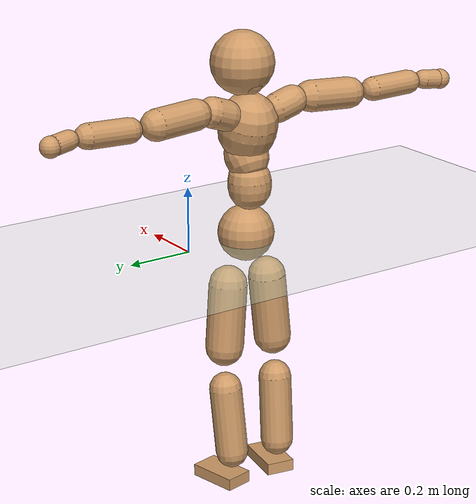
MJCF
<mujoco model="humanoid">
  <compiler coordinate="local"/>
  <default>
    <joint damping="0.0" armature="0.01" stiffness="0.0" limited="true"/>
    <geom conaffinity="1" condim="3" contype="7" margin="0.001" rgba="0.8 0.6 .4 1"/>
  </default>
  <asset>
    <texture type="skybox" builtin="gradient" rgb1=".4 .5 .6" rgb2="0 0 0" width="100" height="100"/>
    <texture builtin="flat" height="1278" mark="cross" markrgb="1 1 1" name="texgeom" random="0.01" rgb1="0.8 0.6 0.4" rgb2="0.8 0.6 0.4" type="cube" width="127"/>
    <texture builtin="checker" height="100" name="texplane" rgb1="0 0 0" rgb2="0.8 0.8 0.8" type="2d" width="100"/>
    <material name="MatPlane" reflectance="0.5" shininess="1" specular="1" texrepeat="60 60" texture="texplane"/>
    <material name="geom" texture="texgeom" texuniform="true"/>
  </asset>
  <worldbody>
    <light cutoff="100" diffuse="1 1 1" dir="-0 0 -1.3" directional="true" exponent="1" pos="0 0 1.3" specular=".1 .1 .1"/>
    <geom conaffinity="1" condim="3" name="floor" pos="0 0 0" rgba="0.8 0.9 0.8 1" size="100 100 .2" type="plane" material="MatPlane"/>
    <body name="Pelvis" pos="-0.0009 -0.2038 0.0242">
      <freejoint name="Pelvis"/>
      <geom type="sphere" contype="1" conaffinity="1" density="500" size="0.0863" pos="0.0000 0.0000 0.0000" name="Pelvis"/>
      <body name="L_Hip" pos="-0.0087 0.0674 -0.084">
        <joint name="L_Hip_x" type="hinge" pos="0 0 0" axis="1 0 0" stiffness="800" damping="80" armature="0.02" range="-180.0000 180.0000"/>
        <joint name="L_Hip_y" type="hinge" pos="0 0 0" axis="0 1 0" stiffness="800" damping="80" armature="0.02" range="-180.0000 180.0000"/>
        <joint name="L_Hip_z" type="hinge" pos="0 0 0" axis="0 0 1" stiffness="800" damping="80" armature="0.02" range="-180.0000 180.0000"/>
        <geom type="capsule" contype="1" conaffinity="1" density="500" fromto="-0.0009 0.0055 -0.0665 -0.0036 0.0220 -0.2661" size="0.0586" name="L_Hip"/>
        <body name="L_Knee" pos="-0.0045 0.0275 -0.3326">
          <joint name="L_Knee_x" type="hinge" pos="0 0 0" axis="1 0 0" stiffness="800" damping="80" armature="0.02" range="-180.0000 180.0000"/>
          <joint name="L_Knee_y" type="hinge" pos="0 0 0" axis="0 1 0" stiffness="800" damping="80" armature="0.02" range="-180.0000 180.0000"/>
          <joint name="L_Knee_z" type="hinge" pos="0 0 0" axis="0 0 1" stiffness="800" damping="80" armature="0.02" range="-180.0000 180.0000"/>
          <geom type="capsule" contype="1" conaffinity="1" density="500" fromto="-0.0079 -0.0021 -0.0689 -0.0314 -0.0085 -0.2754" size="0.0506" name="L_Knee"/>
          <body name="L_Ankle" pos="-0.0393 -0.0106 -0.3443">
            <joint name="L_Ankle_x" type="hinge" pos="0 0 0" axis="1 0 0" stiffness="800" damping="80" armature="0.02" range="-180.0000 180.0000"/>
            <joint name="L_Ankle_y" type="hinge" pos="0 0 0" axis="0 1 0" stiffness="800" damping="80" armature="0.02" range="-180.0000 180.0000"/>
            <joint name="L_Ankle_z" type="hinge" pos="0 0 0" axis="0 0 1" stiffness="800" damping="80" armature="0.02" range="-180.0000 180.0000"/>
            <geom type="box" contype="1" conaffinity="1" density="500" pos="0.0539 0.0111 -0.0248" size="0.0782 0.0438 0.0184" quat="0.9949 0.0000 0.0000 0.1011" name="L_Ankle"/>
            <body name="L_Toe" pos="0.1078 0.0222 -0.0496">
              <joint name="L_Toe_x" type="hinge" pos="0 0 0" axis="1 0 0" stiffness="500" damping="50" armature="0.02" range="-180.0000 180.0000"/>
              <joint name="L_Toe_y" type="hinge" pos="0 0 0" axis="0 1 0" stiffness="500" damping="50" armature="0.02" range="-180.0000 180.0000"/>
              <joint name="L_Toe_z" type="hinge" pos="0 0 0" axis="0 0 1" stiffness="500" damping="50" armature="0.02" range="-180.0000 180.0000"/>
              <geom type="box" contype="1" conaffinity="1" density="500" pos="0.0000 0.0000 0.0246" size="0.0009 0.0022 0.0009" quat="0.9941 0.0000 0.0000 0.1080" name="L_Toe"/>
            </body>
          </body>
        </body>
      </body>
      <body name="R_Hip" pos="-0.0061 -0.0655 -0.083">
        <joint name="R_Hip_x" type="hinge" pos="0 0 0" axis="1 0 0" stiffness="800" damping="80" armature="0.02" range="-180.0000 180.0000"/>
        <joint name="R_Hip_y" type="hinge" pos="0 0 0" axis="0 1 0" stiffness="800" damping="80" armature="0.02" range="-180.0000 180.0000"/>
        <joint name="R_Hip_z" type="hinge" pos="0 0 0" axis="0 0 1" stiffness="800" damping="80" armature="0.02" range="-180.0000 180.0000"/>
        <geom type="capsule" contype="1" conaffinity="1" density="500" fromto="-0.0014 -0.0063 -0.0678 -0.0056 -0.0251 -0.2712" size="0.058" name="R_Hip"/>
        <body name="R_Knee" pos="-0.007 -0.0313 -0.339">
          <joint name="R_Knee_x" type="hinge" pos="0 0 0" axis="1 0 0" stiffness="800" damping="80" armature="0.02" range="-180.0000 180.0000"/>
          <joint name="R_Knee_y" type="hinge" pos="0 0 0" axis="0 1 0" stiffness="800" damping="80" armature="0.02" range="-180.0000 180.0000"/>
          <joint name="R_Knee_z" type="hinge" pos="0 0 0" axis="0 0 1" stiffness="800" damping="80" armature="0.02" range="-180.0000 180.0000"/>
          <geom type="capsule" contype="1" conaffinity="1" density="500" fromto="-0.0077 0.0026 -0.0690 -0.0307 0.0103 -0.2758" size="0.0509" name="R_Knee"/>
          <body name="R_Ankle" pos="-0.0384 0.0128 -0.3448">
            <joint name="R_Ankle_x" type="hinge" pos="0 0 0" axis="1 0 0" stiffness="800" damping="80" armature="0.02" range="-180.0000 180.0000"/>
            <joint name="R_Ankle_y" type="hinge" pos="0 0 0" axis="0 1 0" stiffness="800" damping="80" armature="0.02" range="-180.0000 180.0000"/>
            <joint name="R_Ankle_z" type="hinge" pos="0 0 0" axis="0 0 1" stiffness="800" damping="80" armature="0.02" range="-180.0000 180.0000"/>
            <geom type="box" contype="1" conaffinity="1" density="500" pos="0.0555 -0.0097 -0.0208" size="0.0785 0.0441 0.0183" quat="0.9962 0.0000 0.0000 -0.0867" name="R_Ankle"/>
            <body name="R_Toe" pos="0.111 -0.0195 -0.0416">
              <joint name="R_Toe_x" type="hinge" pos="0 0 0" axis="1 0 0" stiffness="500" damping="50" armature="0.02" range="-180.0000 180.0000"/>
              <joint name="R_Toe_y" type="hinge" pos="0 0 0" axis="0 1 0" stiffness="500" damping="50" armature="0.02" range="-180.0000 180.0000"/>
              <joint name="R_Toe_z" type="hinge" pos="0 0 0" axis="0 0 1" stiffness="500" damping="50" armature="0.02" range="-180.0000 180.0000"/>
              <geom type="box" contype="1" conaffinity="1" density="500" pos="0.0000 0.0000 0.0225" size="0.0009 0.0022 0.001" quat="0.9971 0.0000 0.0000 -0.0766" name="R_Toe"/>
            </body>
          </body>
        </body>
      </body>
      <body name="Torso" pos="-0.0187 -0.0021 0.0962">
        <joint name="Torso_x" type="hinge" pos="0 0 0" axis="1 0 0" stiffness="1000" damping="100" armature="0.02" range="-180.0000 180.0000"/>
        <joint name="Torso_y" type="hinge" pos="0 0 0" axis="0 1 0" stiffness="1000" damping="100" armature="0.02" range="-180.0000 180.0000"/>
        <joint name="Torso_z" type="hinge" pos="0 0 0" axis="0 0 1" stiffness="1000" damping="100" armature="0.02" range="-180.0000 180.0000"/>
        <geom type="capsule" contype="1" conaffinity="1" density="500" fromto="-0.0005 0.0020 0.0732 -0.0003 0.0013 0.0488" size="0.0655" name="Torso"/>
        <body name="Spine" pos="-0.0009 0.0033 0.1221">
          <joint name="Spine_x" type="hinge" pos="0 0 0" axis="1 0 0" stiffness="1000" damping="100" armature="0.02" range="-180.0000 180.0000"/>
          <joint name="Spine_y" type="hinge" pos="0 0 0" axis="0 1 0" stiffness="1000" damping="100" armature="0.02" range="-180.0000 180.0000"/>
          <joint name="Spine_z" type="hinge" pos="0 0 0" axis="0 0 1" stiffness="1000" damping="100" armature="0.02" range="-180.0000 180.0000"/>
          <geom type="capsule" contype="1" conaffinity="1" density="500" fromto="0.0150 0.0012 0.0281 0.0100 0.0008 0.0188" size="0.0668" name="Spine"/>
          <body name="Chest" pos="0.025 0.0021 0.0469">
            <joint name="Chest_x" type="hinge" pos="0 0 0" axis="1 0 0" stiffness="1000" damping="100" armature="0.02" range="-180.0000 180.0000"/>
            <joint name="Chest_y" type="hinge" pos="0 0 0" axis="0 1 0" stiffness="1000" damping="100" armature="0.02" range="-180.0000 180.0000"/>
            <joint name="Chest_z" type="hinge" pos="0 0 0" axis="0 0 1" stiffness="1000" damping="100" armature="0.02" range="-180.0000 180.0000"/>
            <geom type="capsule" contype="1" conaffinity="1" density="500" fromto="-0.0245 -0.0008 0.0830 -0.0163 -0.0005 0.0554" size="0.0887" name="Chest"/>
            <body name="Neck" pos="-0.047 -0.0017 0.1954">
              <joint name="Neck_x" type="hinge" pos="0 0 0" axis="1 0 0" stiffness="500" damping="50" armature="0.02" range="-180.0000 180.0000"/>
              <joint name="Neck_y" type="hinge" pos="0 0 0" axis="0 1 0" stiffness="500" damping="50" armature="0.02" range="-180.0000 180.0000"/>
              <joint name="Neck_z" type="hinge" pos="0 0 0" axis="0 0 1" stiffness="500" damping="50" armature="0.02" range="-180.0000 180.0000"/>
              <geom type="capsule" contype="1" conaffinity="1" density="500" fromto="0.0098 0.0008 0.0120 0.0391 0.0032 0.0481" size="0.0391" name="Neck"/>
              <body name="Head" pos="0.0489 0.004 0.0601">
                <joint name="Head_x" type="hinge" pos="0 0 0" axis="1 0 0" stiffness="500" damping="50" armature="0.02" range="-180.0000 180.0000"/>
                <joint name="Head_y" type="hinge" pos="0 0 0" axis="0 1 0" stiffness="500" damping="50" armature="0.02" range="-180.0000 180.0000"/>
                <joint name="Head_z" type="hinge" pos="0 0 0" axis="0 0 1" stiffness="500" damping="50" armature="0.02" range="-180.0000 180.0000"/>
                <geom type="sphere" contype="1" conaffinity="1" density="500" size="0.0961" pos="0.0000 0.0000 0.0000" name="Head"/>
              </body>
            </body>
            <body name="L_Thorax" pos="-0.0352 0.0701 0.111">
              <joint name="L_Thorax_x" type="hinge" pos="0 0 0" axis="1 0 0" stiffness="500" damping="50" armature="0.02" range="-180.0000 180.0000"/>
              <joint name="L_Thorax_y" type="hinge" pos="0 0 0" axis="0 1 0" stiffness="500" damping="50" armature="0.02" range="-180.0000 180.0000"/>
              <joint name="L_Thorax_z" type="hinge" pos="0 0 0" axis="0 0 1" stiffness="500" damping="50" armature="0.02" range="-180.0000 180.0000"/>
              <geom type="capsule" contype="1" conaffinity="1" density="500" fromto="-0.0012 0.0164 0.0058 -0.0049 0.0654 0.0231" size="0.0463" name="L_Thorax"/>
              <body name="L_Shoulder" pos="-0.0062 0.0818 0.0289">
                <joint name="L_Shoulder_x" type="hinge" pos="0 0 0" axis="1 0 0" stiffness="500" damping="50" armature="0.02" range="-720.0000 720.0000"/>
                <joint name="L_Shoulder_y" type="hinge" pos="0 0 0" axis="0 1 0" stiffness="500" damping="50" armature="0.02" range="-720.0000 720.0000"/>
                <joint name="L_Shoulder_z" type="hinge" pos="0 0 0" axis="0 0 1" stiffness="500" damping="50" armature="0.02" range="-720.0000 720.0000"/>
                <geom type="capsule" contype="1" conaffinity="1" density="500" fromto="-0.0050 0.0463 -0.0018 -0.0198 0.1852 -0.0072" size="0.0467" name="L_Shoulder"/>
                <body name="L_Elbow" pos="-0.0248 0.2315 -0.009">
                  <joint name="L_Elbow_x" type="hinge" pos="0 0 0" axis="1 0 0" stiffness="500" damping="50" armature="0.02" range="-720.0000 720.0000"/>
                  <joint name="L_Elbow_y" type="hinge" pos="0 0 0" axis="0 1 0" stiffness="500" damping="50" armature="0.02" range="-720.0000 720.0000"/>
                  <joint name="L_Elbow_z" type="hinge" pos="0 0 0" axis="0 0 1" stiffness="500" damping="50" armature="0.02" range="-720.0000 720.0000"/>
                  <geom type="capsule" contype="1" conaffinity="1" density="500" fromto="-0.0001 0.0441 0.0014 -0.0004 0.1764 0.0058" size="0.0369" name="L_Elbow"/>
                  <body name="L_Wrist" pos="-0.0005 0.2205 0.0072">
                    <joint name="L_Wrist_x" type="hinge" pos="0 0 0" axis="1 0 0" stiffness="300" damping="30" armature="0.02" range="-180.0000 180.0000"/>
                    <joint name="L_Wrist_y" type="hinge" pos="0 0 0" axis="0 1 0" stiffness="300" damping="30" armature="0.02" range="-180.0000 180.0000"/>
                    <joint name="L_Wrist_z" type="hinge" pos="0 0 0" axis="0 0 1" stiffness="300" damping="30" armature="0.02" range="-180.0000 180.0000"/>
                    <geom type="capsule" contype="1" conaffinity="1" density="500" fromto="-0.0025 0.0151 -0.0018 -0.0100 0.0605 -0.0073" size="0.0287" name="L_Wrist"/>
                    <body name="L_Hand" pos="-0.0125 0.0756 -0.0091">
                      <joint name="L_Hand_x" type="hinge" pos="0 0 0" axis="1 0 0" stiffness="300" damping="30" armature="0.02" range="-180.0000 180.0000"/>
                      <joint name="L_Hand_y" type="hinge" pos="0 0 0" axis="0 1 0" stiffness="300" damping="30" armature="0.02" range="-180.0000 180.0000"/>
                      <joint name="L_Hand_z" type="hinge" pos="0 0 0" axis="0 0 1" stiffness="300" damping="30" armature="0.02" range="-180.0000 180.0000"/>
                      <geom type="sphere" contype="1" conaffinity="1" density="500" size="0.0306" pos="0.0000 0.0000 0.0000" name="L_Hand"/>
                    </body>
                  </body>
                </body>
              </body>
            </body>
            <body name="R_Thorax" pos="-0.0402 -0.0723 0.1088">
              <joint name="R_Thorax_x" type="hinge" pos="0 0 0" axis="1 0 0" stiffness="500" damping="50" armature="0.02" range="-180.0000 180.0000"/>
              <joint name="R_Thorax_y" type="hinge" pos="0 0 0" axis="0 1 0" stiffness="500" damping="50" armature="0.02" range="-180.0000 180.0000"/>
              <joint name="R_Thorax_z" type="hinge" pos="0 0 0" axis="0 0 1" stiffness="500" damping="50" armature="0.02" range="-180.0000 180.0000"/>
              <geom type="capsule" contype="1" conaffinity="1" density="500" fromto="-0.0020 -0.0172 0.0060 -0.0078 -0.0688 0.0239" size="0.0456" name="R_Thorax"/>
              <body name="R_Shoulder" pos="-0.0098 -0.086 0.0299">
                <joint name="R_Shoulder_x" type="hinge" pos="0 0 0" axis="1 0 0" stiffness="500" damping="50" armature="0.02" range="-720.0000 720.0000"/>
                <joint name="R_Shoulder_y" type="hinge" pos="0 0 0" axis="0 1 0" stiffness="500" damping="50" armature="0.02" range="-720.0000 720.0000"/>
                <joint name="R_Shoulder_z" type="hinge" pos="0 0 0" axis="0 0 1" stiffness="500" damping="50" armature="0.02" range="-720.0000 720.0000"/>
                <geom type="capsule" contype="1" conaffinity="1" density="500" fromto="-0.0036 -0.0455 -0.0020 -0.0144 -0.1819 -0.0082" size="0.0479" name="R_Shoulder"/>
                <body name="R_Elbow" pos="-0.0179 -0.2274 -0.0102">
                  <joint name="R_Elbow_x" type="hinge" pos="0 0 0" axis="1 0 0" stiffness="500" damping="50" armature="0.02" range="-720.0000 720.0000"/>
                  <joint name="R_Elbow_y" type="hinge" pos="0 0 0" axis="0 1 0" stiffness="500" damping="50" armature="0.02" range="-720.0000 720.0000"/>
                  <joint name="R_Elbow_z" type="hinge" pos="0 0 0" axis="0 0 1" stiffness="500" damping="50" armature="0.02" range="-720.0000 720.0000"/>
                  <geom type="capsule" contype="1" conaffinity="1" density="500" fromto="-0.0008 -0.0455 0.0013 -0.0031 -0.1819 0.0052" size="0.0369" name="R_Elbow"/>
                  <body name="R_Wrist" pos="-0.0039 -0.2274 0.0065">
                    <joint name="R_Wrist_x" type="hinge" pos="0 0 0" axis="1 0 0" stiffness="300" damping="30" armature="0.02" range="-180.0000 180.0000"/>
                    <joint name="R_Wrist_y" type="hinge" pos="0 0 0" axis="0 1 0" stiffness="300" damping="30" armature="0.02" range="-180.0000 180.0000"/>
                    <joint name="R_Wrist_z" type="hinge" pos="0 0 0" axis="0 0 1" stiffness="300" damping="30" armature="0.02" range="-180.0000 180.0000"/>
                    <geom type="capsule" contype="1" conaffinity="1" density="500" fromto="-0.0020 -0.0153 -0.0014 -0.0079 -0.0612 -0.0055" size="0.0295" name="R_Wrist"/>
                    <body name="R_Hand" pos="-0.0099 -0.0765 -0.0069">
                      <joint name="R_Hand_x" type="hinge" pos="0 0 0" axis="1 0 0" stiffness="300" damping="30" armature="0.02" range="-180.0000 180.0000"/>
                      <joint name="R_Hand_y" type="hinge" pos="0 0 0" axis="0 1 0" stiffness="300" damping="30" armature="0.02" range="-180.0000 180.0000"/>
                      <joint name="R_Hand_z" type="hinge" pos="0 0 0" axis="0 0 1" stiffness="300" damping="30" armature="0.02" range="-180.0000 180.0000"/>
                      <geom type="sphere" contype="1" conaffinity="1" density="500" size="0.0309" pos="0.0000 0.0000 0.0000" name="R_Hand"/>
                    </body>
                  </body>
                </body>
              </body>
            </body>
          </body>
        </body>
      </body>
    </body>
  </worldbody>
  <actuator>
    <motor name="L_Hip_x" joint="L_Hip_x" gear="500"/>
    <motor name="L_Hip_y" joint="L_Hip_y" gear="500"/>
    <motor name="L_Hip_z" joint="L_Hip_z" gear="500"/>
    <motor name="L_Knee_x" joint="L_Knee_x" gear="500"/>
    <motor name="L_Knee_y" joint="L_Knee_y" gear="500"/>
    <motor name="L_Knee_z" joint="L_Knee_z" gear="500"/>
    <motor name="L_Ankle_x" joint="L_Ankle_x" gear="500"/>
    <motor name="L_Ankle_y" joint="L_Ankle_y" gear="500"/>
    <motor name="L_Ankle_z" joint="L_Ankle_z" gear="500"/>
    <motor name="L_Toe_x" joint="L_Toe_x" gear="500"/>
    <motor name="L_Toe_y" joint="L_Toe_y" gear="500"/>
    <motor name="L_Toe_z" joint="L_Toe_z" gear="500"/>
    <motor name="R_Hip_x" joint="R_Hip_x" gear="500"/>
    <motor name="R_Hip_y" joint="R_Hip_y" gear="500"/>
    <motor name="R_Hip_z" joint="R_Hip_z" gear="500"/>
    <motor name="R_Knee_x" joint="R_Knee_x" gear="500"/>
    <motor name="R_Knee_y" joint="R_Knee_y" gear="500"/>
    <motor name="R_Knee_z" joint="R_Knee_z" gear="500"/>
    <motor name="R_Ankle_x" joint="R_Ankle_x" gear="500"/>
    <motor name="R_Ankle_y" joint="R_Ankle_y" gear="500"/>
    <motor name="R_Ankle_z" joint="R_Ankle_z" gear="500"/>
    <motor name="R_Toe_x" joint="R_Toe_x" gear="500"/>
    <motor name="R_Toe_y" joint="R_Toe_y" gear="500"/>
    <motor name="R_Toe_z" joint="R_Toe_z" gear="500"/>
    <motor name="Torso_x" joint="Torso_x" gear="500"/>
    <motor name="Torso_y" joint="Torso_y" gear="500"/>
    <motor name="Torso_z" joint="Torso_z" gear="500"/>
    <motor name="Spine_x" joint="Spine_x" gear="500"/>
    <motor name="Spine_y" joint="Spine_y" gear="500"/>
    <motor name="Spine_z" joint="Spine_z" gear="500"/>
    <motor name="Chest_x" joint="Chest_x" gear="500"/>
    <motor name="Chest_y" joint="Chest_y" gear="500"/>
    <motor name="Chest_z" joint="Chest_z" gear="500"/>
    <motor name="Neck_x" joint="Neck_x" gear="500"/>
    <motor name="Neck_y" joint="Neck_y" gear="500"/>
    <motor name="Neck_z" joint="Neck_z" gear="500"/>
    <motor name="Head_x" joint="Head_x" gear="500"/>
    <motor name="Head_y" joint="Head_y" gear="500"/>
    <motor name="Head_z" joint="Head_z" gear="500"/>
    <motor name="L_Thorax_x" joint="L_Thorax_x" gear="500"/>
    <motor name="L_Thorax_y" joint="L_Thorax_y" gear="500"/>
    <motor name="L_Thorax_z" joint="L_Thorax_z" gear="500"/>
    <motor name="L_Shoulder_x" joint="L_Shoulder_x" gear="500"/>
    <motor name="L_Shoulder_y" joint="L_Shoulder_y" gear="500"/>
    <motor name="L_Shoulder_z" joint="L_Shoulder_z" gear="500"/>
    <motor name="L_Elbow_x" joint="L_Elbow_x" gear="500"/>
    <motor name="L_Elbow_y" joint="L_Elbow_y" gear="500"/>
    <motor name="L_Elbow_z" joint="L_Elbow_z" gear="500"/>
    <motor name="L_Wrist_x" joint="L_Wrist_x" gear="500"/>
    <motor name="L_Wrist_y" joint="L_Wrist_y" gear="500"/>
    <motor name="L_Wrist_z" joint="L_Wrist_z" gear="500"/>
    <motor name="L_Hand_x" joint="L_Hand_x" gear="500"/>
    <motor name="L_Hand_y" joint="L_Hand_y" gear="500"/>
    <motor name="L_Hand_z" joint="L_Hand_z" gear="500"/>
    <motor name="R_Thorax_x" joint="R_Thorax_x" gear="500"/>
    <motor name="R_Thorax_y" joint="R_Thorax_y" gear="500"/>
    <motor name="R_Thorax_z" joint="R_Thorax_z" gear="500"/>
    <motor name="R_Shoulder_x" joint="R_Shoulder_x" gear="500"/>
    <motor name="R_Shoulder_y" joint="R_Shoulder_y" gear="500"/>
    <motor name="R_Shoulder_z" joint="R_Shoulder_z" gear="500"/>
    <motor name="R_Elbow_x" joint="R_Elbow_x" gear="500"/>
    <motor name="R_Elbow_y" joint="R_Elbow_y" gear="500"/>
    <motor name="R_Elbow_z" joint="R_Elbow_z" gear="500"/>
    <motor name="R_Wrist_x" joint="R_Wrist_x" gear="500"/>
    <motor name="R_Wrist_y" joint="R_Wrist_y" gear="500"/>
    <motor name="R_Wrist_z" joint="R_Wrist_z" gear="500"/>
    <motor name="R_Hand_x" joint="R_Hand_x" gear="500"/>
    <motor name="R_Hand_y" joint="R_Hand_y" gear="500"/>
    <motor name="R_Hand_z" joint="R_Hand_z" gear="500"/>
  </actuator>
  <contact>
    <exclude body1="Torso" body2="Chest"/>
    <exclude body1="Head" body2="Chest"/>
    <exclude body1="R_Knee" body2="R_Toe"/>
    <exclude body1="R_Knee" body2="L_Ankle"/>
    <exclude body1="R_Knee" body2="L_Toe"/>
    <exclude body1="L_Knee" body2="L_Toe"/>
    <exclude body1="L_Knee" body2="R_Ankle"/>
    <exclude body1="L_Knee" body2="R_Toe"/>
    <exclude body1="L_Shoulder" body2="Chest"/>
    <exclude body1="R_Shoulder" body2="Chest"/>
  </contact>
  <sensor/>
  <size njmax="700" nconmax="700"/>
</mujoco>
